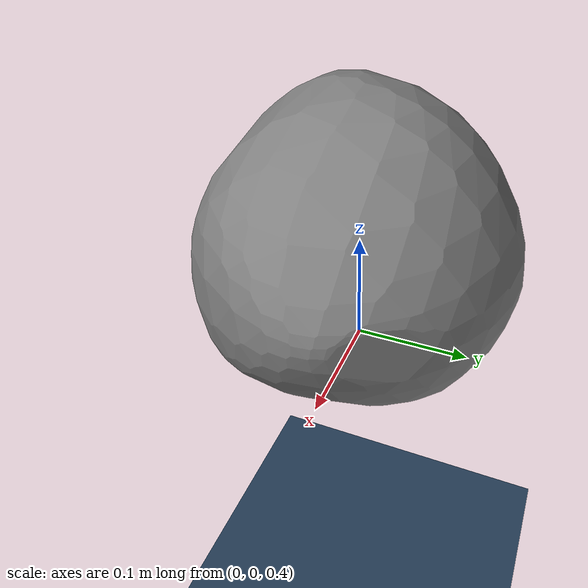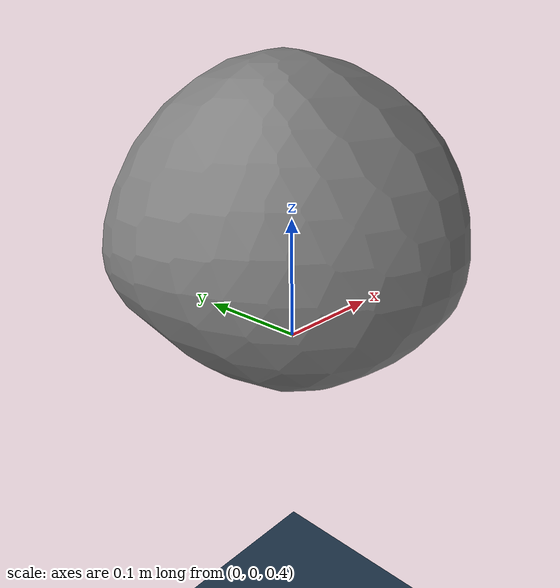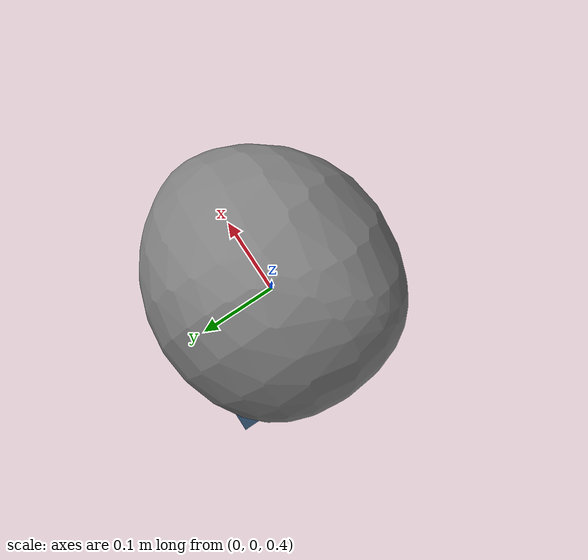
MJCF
<mujoco model="test_mesh">
  <compiler meshdir="meshes" angle="radian"/>

  <visual>
    <global offwidth="2560" offheight="1440"/>
  </visual>

  <asset>
    <texture type="2d" colorspace="auto" name="grid" builtin="checker" rgb1="0.1 0.2 0.3" rgb2="0.2 0.3 0.4" width="512" height="512"/>
    <material name="grid_mat" texture="grid" texrepeat="8 8" reflectance="0.2"/>
    <mesh name="asteroid" file="2_Pallas_101.obj" scale="0.0005 0.0005 0.0005"/>
  </asset>

  <worldbody>
    <geom name="floor" size="2 2 0.1" type="plane" material="grid_mat"/>
    <light name="top_light" pos="0 0 4" dir="0 0 -1" diffuse="0.8 0.8 0.8"/>
    <light name="front_light" pos="2 0 2" dir="-0.894427 0 -0.447214" diffuse="0.4 0.4 0.4"/>

    <body name="asteroid_body" pos="0 0 0">
      <geom type="mesh" mesh="asteroid" pos="0 0 0.5"/>
    </body>

    <camera name="view" pos="4 -4 4" quat="0.92388 0.382683 0 0"/>
  </worldbody>
</mujoco>
